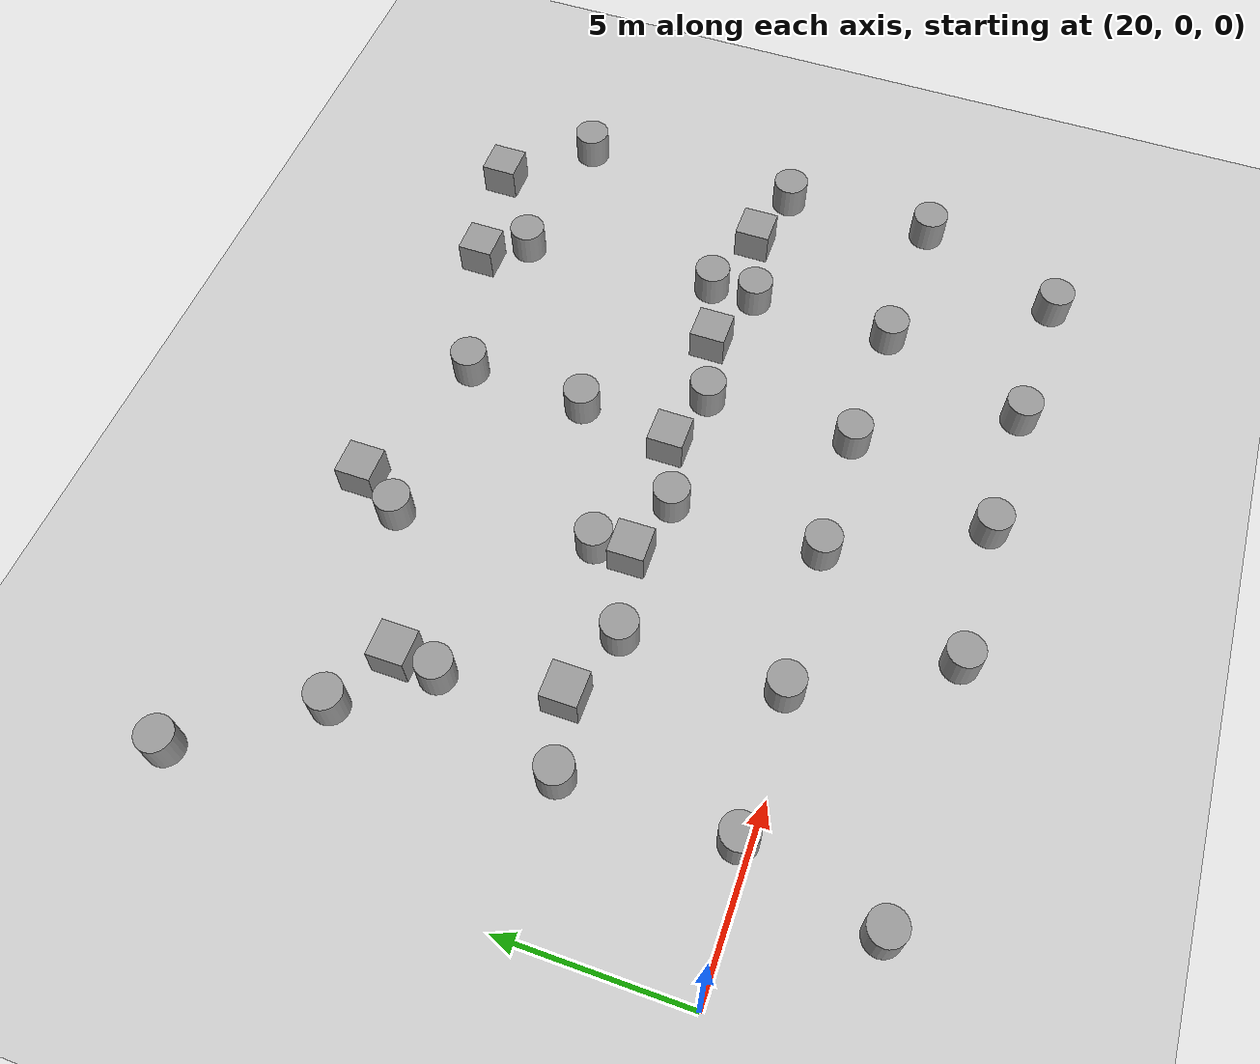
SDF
<sdf version="1.7">
 <world name="default">
  <model name="ground_plane">
   <static>1</static>
   <link name="link">
    <collision name="collision">
     <geometry><plane><normal>0 0 1</normal><size>100 100</size></plane></geometry>
     <surface>
      <contact><collide_bitmask>65535</collide_bitmask></contact>
      <friction><ode><mu>100</mu><mu2>50</mu2></ode></friction>
     </surface>
    </collision>
    <visual name="visual">
     <cast_shadows>0</cast_shadows>
     <geometry><plane><normal>0 0 1</normal><size>100 100</size></plane></geometry>
     <material>
      <script><uri>file://media/materials/scripts/gazebo.material</uri><name>Gazebo/Grey</name></script>
     </material>
    </visual>
   </link>
  </model>
  <model name="unit_cylinder_5">
   <pose>22.8884 -3.35687 0.499997 -5e-06 -1e-06 0</pose>
   <link name="link">
    <inertial>
     <mass>1</mass>
     <inertia><ixx>0.145833</ixx><ixy>0</ixy><ixz>0</ixz><iyy>0.145833</iyy><iyz>0</iyz><izz>0.125</izz></inertia>
    </inertial>
    <collision name="collision">
     <geometry><cylinder><radius>0.5</radius><length>1</length></cylinder></geometry>
    </collision>
    <visual name="visual">
     <geometry><cylinder><radius>0.5</radius><length>1</length></cylinder></geometry>
     <material>
      <script><name>Gazebo/Grey</name><uri>file://media/materials/scripts/gazebo.material</uri></script>
     </material>
    </visual>
   </link>
  </model>
  <model name="unit_cylinder_17">
   <pose>23.7386 10.803 0.499994 -3e-06 -1e-06 -0</pose>
   <link name="link">
    <inertial>
     <mass>1</mass>
     <inertia><ixx>0.145833</ixx><ixy>0</ixy><ixz>0</ixz><iyy>0.145833</iyy><iyz>0</iyz><izz>0.125</izz></inertia>
    </inertial>
    <collision name="collision">
     <geometry><cylinder><radius>0.5</radius><length>1</length></cylinder></geometry>
    </collision>
    <visual name="visual">
     <geometry><cylinder><radius>0.5</radius><length>1</length></cylinder></geometry>
     <material>
      <script><name>Gazebo/Grey</name><uri>file://media/materials/scripts/gazebo.material</uri></script>
     </material>
    </visual>
   </link>
  </model>
  <model name="unit_cylinder_19">
   <pose>23.8281 0.332783 0.499994 -3e-06 -1e-06 -0</pose>
   <link name="link">
    <inertial>
     <mass>1</mass>
     <inertia><ixx>0.145833</ixx><ixy>0</ixy><ixz>0</ixz><iyy>0.145833</iyy><iyz>0</iyz><izz>0.125</izz></inertia>
    </inertial>
    <collision name="collision">
     <geometry><cylinder><radius>0.5</radius><length>1</length></cylinder></geometry>
    </collision>
    <visual name="visual">
     <geometry><cylinder><radius>0.5</radius><length>1</length></cylinder></geometry>
     <material>
      <script><name>Gazebo/Grey</name><uri>file://media/materials/scripts/gazebo.material</uri></script>
     </material>
    </visual>
   </link>
  </model>
  <model name="unit_cylinder_20">
   <pose>23.8675 4.89288 0.499997 3e-06 2e-06 0</pose>
   <link name="link">
    <inertial>
     <mass>1</mass>
     <inertia><ixx>0.145833</ixx><ixy>0</ixy><ixz>0</ixz><iyy>0.145833</iyy><iyz>0</iyz><izz>0.125</izz></inertia>
    </inertial>
    <collision name="collision">
     <geometry><cylinder><radius>0.5</radius><length>1</length></cylinder></geometry>
    </collision>
    <visual name="visual">
     <geometry><cylinder><radius>0.5</radius><length>1</length></cylinder></geometry>
     <material>
      <script><name>Gazebo/Grey</name><uri>file://media/materials/scripts/gazebo.material</uri></script>
     </material>
    </visual>
   </link>
  </model>
  <model name="unit_cylinder_21">
   <pose>29.2741 11.5981 0.499994 -3e-06 -2e-06 0</pose>
   <link name="link">
    <inertial>
     <mass>1</mass>
     <inertia><ixx>0.145833</ixx><ixy>0</ixy><ixz>0</ixz><iyy>0.145833</iyy><iyz>0</iyz><izz>0.125</izz></inertia>
    </inertial>
    <collision name="collision">
     <geometry><cylinder><radius>0.5</radius><length>1</length></cylinder></geometry>
    </collision>
    <visual name="visual">
     <geometry><cylinder><radius>0.5</radius><length>1</length></cylinder></geometry>
     <material>
      <script><name>Gazebo/Grey</name><uri>file://media/materials/scripts/gazebo.material</uri></script>
     </material>
    </visual>
   </link>
  </model>
  <model name="unit_cylinder_22">
   <pose>27.8376 4.7217 0.499997 3e-06 2e-06 0</pose>
   <link name="link">
    <inertial>
     <mass>1</mass>
     <inertia><ixx>0.145833</ixx><ixy>0</ixy><ixz>0</ixz><iyy>0.145833</iyy><iyz>0</iyz><izz>0.125</izz></inertia>
    </inertial>
    <collision name="collision">
     <geometry><cylinder><radius>0.5</radius><length>1</length></cylinder></geometry>
    </collision>
    <visual name="visual">
     <geometry><cylinder><radius>0.5</radius><length>1</length></cylinder></geometry>
     <material>
      <script><name>Gazebo/Grey</name><uri>file://media/materials/scripts/gazebo.material</uri></script>
     </material>
    </visual>
   </link>
  </model>
  <model name="unit_cylinder_23">
   <pose>27.7679 0.370614 0.499994 -3e-06 -2e-06 0</pose>
   <link name="link">
    <inertial>
     <mass>1</mass>
     <inertia><ixx>0.145833</ixx><ixy>0</ixy><ixz>0</ixz><iyy>0.145833</iyy><iyz>0</iyz><izz>0.125</izz></inertia>
    </inertial>
    <collision name="collision">
     <geometry><cylinder><radius>0.5</radius><length>1</length></cylinder></geometry>
    </collision>
    <visual name="visual">
     <geometry><cylinder><radius>0.5</radius><length>1</length></cylinder></geometry>
     <material>
      <script><name>Gazebo/Grey</name><uri>file://media/materials/scripts/gazebo.material</uri></script>
     </material>
    </visual>
   </link>
  </model>
  <model name="unit_cylinder_24">
   <pose>31.9263 4.75221 0.499997 -3e-06 -2e-06 0</pose>
   <link name="link">
    <inertial>
     <mass>1</mass>
     <inertia><ixx>0.145833</ixx><ixy>0</ixy><ixz>0</ixz><iyy>0.145833</iyy><iyz>0</iyz><izz>0.125</izz></inertia>
    </inertial>
    <collision name="collision">
     <geometry><cylinder><radius>0.5</radius><length>1</length></cylinder></geometry>
    </collision>
    <visual name="visual">
     <geometry><cylinder><radius>0.5</radius><length>1</length></cylinder></geometry>
     <material>
      <script><name>Gazebo/Grey</name><uri>file://media/materials/scripts/gazebo.material</uri></script>
     </material>
    </visual>
   </link>
  </model>
  <model name="unit_cylinder_25">
   <pose>31.8619 0.582942 0.499997 3e-06 2e-06 0</pose>
   <link name="link">
    <inertial>
     <mass>1</mass>
     <inertia><ixx>0.145833</ixx><ixy>0</ixy><ixz>0</ixz><iyy>0.145833</iyy><iyz>0</iyz><izz>0.125</izz></inertia>
    </inertial>
    <collision name="collision">
     <geometry><cylinder><radius>0.5</radius><length>1</length></cylinder></geometry>
    </collision>
    <visual name="visual">
     <geometry><cylinder><radius>0.5</radius><length>1</length></cylinder></geometry>
     <material>
      <script><name>Gazebo/Grey</name><uri>file://media/materials/scripts/gazebo.material</uri></script>
     </material>
    </visual>
   </link>
  </model>
  <model name="unit_cylinder_26">
   <pose>35.507 4.90735 0.499997 3e-06 2e-06 0</pose>
   <link name="link">
    <inertial>
     <mass>1</mass>
     <inertia><ixx>0.145833</ixx><ixy>0</ixy><ixz>0</ixz><iyy>0.145833</iyy><iyz>0</iyz><izz>0.125</izz></inertia>
    </inertial>
    <collision name="collision">
     <geometry><cylinder><radius>0.5</radius><length>1</length></cylinder></geometry>
    </collision>
    <visual name="visual">
     <geometry><cylinder><radius>0.5</radius><length>1</length></cylinder></geometry>
     <material>
      <script><name>Gazebo/Grey</name><uri>file://media/materials/scripts/gazebo.material</uri></script>
     </material>
    </visual>
   </link>
  </model>
  <model name="unit_cylinder_27">
   <pose>35.4721 0.714644 0.499994 -3e-06 -2e-06 0</pose>
   <link name="link">
    <inertial>
     <mass>1</mass>
     <inertia><ixx>0.145833</ixx><ixy>0</ixy><ixz>0</ixz><iyy>0.145833</iyy><iyz>0</iyz><izz>0.125</izz></inertia>
    </inertial>
    <collision name="collision">
     <geometry><cylinder><radius>0.5</radius><length>1</length></cylinder></geometry>
    </collision>
    <visual name="visual">
     <geometry><cylinder><radius>0.5</radius><length>1</length></cylinder></geometry>
     <material>
      <script><name>Gazebo/Grey</name><uri>file://media/materials/scripts/gazebo.material</uri></script>
     </material>
    </visual>
   </link>
  </model>
  <model name="unit_cylinder_28">
   <pose>39.3731 4.72285 0.499997 3e-06 2e-06 0</pose>
   <link name="link">
    <inertial>
     <mass>1</mass>
     <inertia><ixx>0.145833</ixx><ixy>0</ixy><ixz>0</ixz><iyy>0.145833</iyy><iyz>0</iyz><izz>0.125</izz></inertia>
    </inertial>
    <collision name="collision">
     <geometry><cylinder><radius>0.5</radius><length>1</length></cylinder></geometry>
    </collision>
    <visual name="visual">
     <geometry><cylinder><radius>0.5</radius><length>1</length></cylinder></geometry>
     <material>
      <script><name>Gazebo/Grey</name><uri>file://media/materials/scripts/gazebo.material</uri></script>
     </material>
    </visual>
   </link>
  </model>
  <model name="unit_cylinder_29">
   <pose>39.2782 0.646206 0.499994 -3e-06 -2e-06 0</pose>
   <link name="link">
    <inertial>
     <mass>1</mass>
     <inertia><ixx>0.145833</ixx><ixy>0</ixy><ixz>0</ixz><iyy>0.145833</iyy><iyz>0</iyz><izz>0.125</izz></inertia>
    </inertial>
    <collision name="collision">
     <geometry><cylinder><radius>0.5</radius><length>1</length></cylinder></geometry>
    </collision>
    <visual name="visual">
     <geometry><cylinder><radius>0.5</radius><length>1</length></cylinder></geometry>
     <material>
      <script><name>Gazebo/Grey</name><uri>file://media/materials/scripts/gazebo.material</uri></script>
     </material>
    </visual>
   </link>
  </model>
  <model name="unit_cylinder_30">
   <pose>29.9393 -3.56031 0.499997 3e-06 2e-06 0</pose>
   <link name="link">
    <inertial>
     <mass>1</mass>
     <inertia><ixx>0.145833</ixx><ixy>0</ixy><ixz>0</ixz><iyy>0.145833</iyy><iyz>0</iyz><izz>0.125</izz></inertia>
    </inertial>
    <collision name="collision">
     <geometry><cylinder><radius>0.5</radius><length>1</length></cylinder></geometry>
    </collision>
    <visual name="visual">
     <geometry><cylinder><radius>0.5</radius><length>1</length></cylinder></geometry>
     <material>
      <script><name>Gazebo/Grey</name><uri>file://media/materials/scripts/gazebo.material</uri></script>
     </material>
    </visual>
   </link>
  </model>
  <model name="unit_cylinder_31">
   <pose>33.9627 -3.45402 0.499994 -3e-06 -2e-06 0</pose>
   <link name="link">
    <inertial>
     <mass>1</mass>
     <inertia><ixx>0.145833</ixx><ixy>0</ixy><ixz>0</ixz><iyy>0.145833</iyy><iyz>0</iyz><izz>0.125</izz></inertia>
    </inertial>
    <collision name="collision">
     <geometry><cylinder><radius>0.5</radius><length>1</length></cylinder></geometry>
    </collision>
    <visual name="visual">
     <geometry><cylinder><radius>0.5</radius><length>1</length></cylinder></geometry>
     <material>
      <script><name>Gazebo/Grey</name><uri>file://media/materials/scripts/gazebo.material</uri></script>
     </material>
    </visual>
   </link>
  </model>
  <model name="unit_cylinder_32">
   <pose>37.7582 -3.49242 0.499997 4e-06 2e-06 -0</pose>
   <link name="link">
    <inertial>
     <mass>1</mass>
     <inertia><ixx>0.145833</ixx><ixy>0</ixy><ixz>0</ixz><iyy>0.145833</iyy><iyz>0</iyz><izz>0.125</izz></inertia>
    </inertial>
    <collision name="collision">
     <geometry><cylinder><radius>0.5</radius><length>1</length></cylinder></geometry>
    </collision>
    <visual name="visual">
     <geometry><cylinder><radius>0.5</radius><length>1</length></cylinder></geometry>
     <material>
      <script><name>Gazebo/Grey</name><uri>file://media/materials/scripts/gazebo.material</uri></script>
     </material>
    </visual>
   </link>
  </model>
  <model name="unit_cylinder_33">
   <pose>41.8535 -3.61097 0.499994 -4e-06 -3e-06 -0</pose>
   <link name="link">
    <inertial>
     <mass>1</mass>
     <inertia><ixx>0.145833</ixx><ixy>0</ixy><ixz>0</ixz><iyy>0.145833</iyy><iyz>0</iyz><izz>0.125</izz></inertia>
    </inertial>
    <collision name="collision">
     <geometry><cylinder><radius>0.5</radius><length>1</length></cylinder></geometry>
    </collision>
    <visual name="visual">
     <geometry><cylinder><radius>0.5</radius><length>1</length></cylinder></geometry>
     <material>
      <script><name>Gazebo/Grey</name><uri>file://media/materials/scripts/gazebo.material</uri></script>
     </material>
    </visual>
   </link>
  </model>
  <model name="unit_cylinder_34">
   <pose>43.4707 4.84227 0.5 0 -0 0</pose>
   <link name="link">
    <inertial>
     <mass>1</mass>
     <inertia><ixx>0.145833</ixx><ixy>0</ixy><ixz>0</ixz><iyy>0.145833</iyy><iyz>0</iyz><izz>0.125</izz></inertia>
    </inertial>
    <collision name="collision">
     <geometry><cylinder><radius>0.5</radius><length>1</length></cylinder></geometry>
    </collision>
    <visual name="visual">
     <geometry><cylinder><radius>0.5</radius><length>1</length></cylinder></geometry>
     <material>
      <script><name>Gazebo/Grey</name><uri>file://media/materials/scripts/gazebo.material</uri></script>
     </material>
    </visual>
   </link>
  </model>
  <model name="unit_cylinder_35">
   <pose>43.5544 0.506139 0.499994 -4e-06 -3e-06 -0</pose>
   <link name="link">
    <inertial>
     <mass>1</mass>
     <inertia><ixx>0.145833</ixx><ixy>0</ixy><ixz>0</ixz><iyy>0.145833</iyy><iyz>0</iyz><izz>0.125</izz></inertia>
    </inertial>
    <collision name="collision">
     <geometry><cylinder><radius>0.5</radius><length>1</length></cylinder></geometry>
    </collision>
    <visual name="visual">
     <geometry><cylinder><radius>0.5</radius><length>1</length></cylinder></geometry>
     <material>
      <script><name>Gazebo/Grey</name><uri>file://media/materials/scripts/gazebo.material</uri></script>
     </material>
    </visual>
   </link>
  </model>
  <model name="unit_cylinder_36">
   <pose>34.257 11.5672 0.499994 -4e-06 -3e-06 -0</pose>
   <link name="link">
    <inertial>
     <mass>1</mass>
     <inertia><ixx>0.145833</ixx><ixy>0</ixy><ixz>0</ixz><iyy>0.145833</iyy><iyz>0</iyz><izz>0.125</izz></inertia>
    </inertial>
    <collision name="collision">
     <geometry><cylinder><radius>0.5</radius><length>1</length></cylinder></geometry>
    </collision>
    <visual name="visual">
     <geometry><cylinder><radius>0.5</radius><length>1</length></cylinder></geometry>
     <material>
      <script><name>Gazebo/Grey</name><uri>file://media/materials/scripts/gazebo.material</uri></script>
     </material>
    </visual>
   </link>
  </model>
  <model name="unit_cylinder_37">
   <pose>39.0648 11.7422 0.499997 4e-06 3e-06 -0</pose>
   <link name="link">
    <inertial>
     <mass>1</mass>
     <inertia><ixx>0.145833</ixx><ixy>0</ixy><ixz>0</ixz><iyy>0.145833</iyy><iyz>0</iyz><izz>0.125</izz></inertia>
    </inertial>
    <collision name="collision">
     <geometry><cylinder><radius>0.5</radius><length>1</length></cylinder></geometry>
    </collision>
    <visual name="visual">
     <geometry><cylinder><radius>0.5</radius><length>1</length></cylinder></geometry>
     <material>
      <script><name>Gazebo/Grey</name><uri>file://media/materials/scripts/gazebo.material</uri></script>
     </material>
    </visual>
   </link>
  </model>
  <model name="unit_cylinder_38">
   <pose>43.4124 11.3153 0.499997 4e-06 3e-06 -0</pose>
   <link name="link">
    <inertial>
     <mass>1</mass>
     <inertia><ixx>0.145833</ixx><ixy>0</ixy><ixz>0</ixz><iyy>0.145833</iyy><iyz>0</iyz><izz>0.125</izz></inertia>
    </inertial>
    <collision name="collision">
     <geometry><cylinder><radius>0.5</radius><length>1</length></cylinder></geometry>
    </collision>
    <visual name="visual">
     <geometry><cylinder><radius>0.5</radius><length>1</length></cylinder></geometry>
     <material>
      <script><name>Gazebo/Grey</name><uri>file://media/materials/scripts/gazebo.material</uri></script>
     </material>
    </visual>
   </link>
  </model>
  <model name="unit_cylinder_39">
   <pose>39.3894 6.0355 0.499994 -4e-06 -4e-06 -0</pose>
   <link name="link">
    <inertial>
     <mass>1</mass>
     <inertia><ixx>0.145833</ixx><ixy>0</ixy><ixz>0</ixz><iyy>0.145833</iyy><iyz>0</iyz><izz>0.125</izz></inertia>
    </inertial>
    <collision name="collision">
     <geometry><cylinder><radius>0.5</radius><length>1</length></cylinder></geometry>
    </collision>
    <visual name="visual">
     <geometry><cylinder><radius>0.5</radius><length>1</length></cylinder></geometry>
     <material>
      <script><name>Gazebo/Grey</name><uri>file://media/materials/scripts/gazebo.material</uri></script>
     </material>
    </visual>
   </link>
  </model>
  <model name="unit_cylinder_40">
   <pose>34.1057 8.12497 0.499994 -1e-06 -6e-06 0.00063</pose>
   <link name="link">
    <inertial>
     <mass>1</mass>
     <inertia><ixx>0.145833</ixx><ixy>0</ixy><ixz>0</ixz><iyy>0.145833</iyy><iyz>0</iyz><izz>0.125</izz></inertia>
    </inertial>
    <collision name="collision">
     <geometry><cylinder><radius>0.5</radius><length>1</length></cylinder></geometry>
    </collision>
    <visual name="visual">
     <geometry><cylinder><radius>0.5</radius><length>1</length></cylinder></geometry>
     <material>
      <script><name>Gazebo/Grey</name><uri>file://media/materials/scripts/gazebo.material</uri></script>
     </material>
    </visual>
   </link>
  </model>
  <model name="unit_cylinder_41">
   <pose>30.0835 6.24818 0.499997 3e-06 2e-06 -0.003425</pose>
   <link name="link">
    <inertial>
     <mass>1</mass>
     <inertia><ixx>0.145833</ixx><ixy>0</ixy><ixz>0</ixz><iyy>0.145833</iyy><iyz>0</iyz><izz>0.125</izz></inertia>
    </inertial>
    <collision name="collision">
     <geometry><cylinder><radius>0.5</radius><length>1</length></cylinder></geometry>
    </collision>
    <visual name="visual">
     <geometry><cylinder><radius>0.5</radius><length>1</length></cylinder></geometry>
     <material>
      <script><name>Gazebo/Grey</name><uri>file://media/materials/scripts/gazebo.material</uri></script>
     </material>
    </visual>
   </link>
  </model>
  <model name="unit_cylinder_42">
   <pose>25.3497 8.64343 0.499994 -4e-06 -3e-06 0.056303</pose>
   <link name="link">
    <inertial>
     <mass>1</mass>
     <inertia><ixx>0.145833</ixx><ixy>0</ixy><ixz>0</ixz><iyy>0.145833</iyy><iyz>0</iyz><izz>0.125</izz></inertia>
    </inertial>
    <collision name="collision">
     <geometry><cylinder><radius>0.5</radius><length>1</length></cylinder></geometry>
    </collision>
    <visual name="visual">
     <geometry><cylinder><radius>0.5</radius><length>1</length></cylinder></geometry>
     <material>
      <script><name>Gazebo/Grey</name><uri>file://media/materials/scripts/gazebo.material</uri></script>
     </material>
    </visual>
   </link>
  </model>
  <model name="unit_box_10">
   <pose>25.8503 5.39619 0.499995 0 1e-05 0</pose>
   <link name="link">
    <inertial>
     <mass>1</mass>
     <inertia>
      <ixx>0.166667</ixx>
      <ixy>0</ixy>
      <ixz>0</ixz>
      <iyy>0.166667</iyy>
      <iyz>0</iyz>
      <izz>0.166667</izz>
     </inertia>
    </inertial>
    <collision name="collision"><geometry><box><size>1 1 1</size></box></geometry></collision>
    <visual name="visual">
     <geometry><box><size>1 1 1</size></box></geometry>
     <material>
      <script><name>Gazebo/Grey</name><uri>file://media/materials/scripts/gazebo.material</uri></script>
     </material>
    </visual>
   </link>
  </model>
  <model name="unit_box_11">
   <pose>30.106 5.22927 0.5 0 -0 0.016809</pose>
   <link name="link">
    <inertial>
     <mass>1</mass>
     <inertia>
      <ixx>0.166667</ixx>
      <ixy>0</ixy>
      <ixz>0</ixz>
      <iyy>0.166667</iyy>
      <iyz>0</iyz>
      <izz>0.166667</izz>
     </inertia>
    </inertial>
    <collision name="collision"><geometry><box><size>1 1 1</size></box></geometry></collision>
    <visual name="visual">
     <geometry><box><size>1 1 1</size></box></geometry>
     <material>
      <script><name>Gazebo/Grey</name><uri>file://media/materials/scripts/gazebo.material</uri></script>
     </material>
    </visual>
   </link>
  </model>
  <model name="unit_box_12">
   <pose>33.6726 5.38909 0.499995 0 1e-05 0</pose>
   <link name="link">
    <inertial>
     <mass>1</mass>
     <inertia>
      <ixx>0.166667</ixx>
      <ixy>0</ixy>
      <ixz>0</ixz>
      <iyy>0.166667</iyy>
      <iyz>0</iyz>
      <izz>0.166667</izz>
     </inertia>
    </inertial>
    <collision name="collision"><geometry><box><size>1 1 1</size></box></geometry></collision>
    <visual name="visual">
     <geometry><box><size>1 1 1</size></box></geometry>
     <material>
      <script><name>Gazebo/Grey</name><uri>file://media/materials/scripts/gazebo.material</uri></script>
     </material>
    </visual>
   </link>
  </model>
  <model name="unit_box_13">
   <pose>37.3999 5.40579 0.499995 1e-05 -0 0</pose>
   <link name="link">
    <inertial>
     <mass>1</mass>
     <inertia>
      <ixx>0.166667</ixx>
      <ixy>0</ixy>
      <ixz>0</ixz>
      <iyy>0.166667</iyy>
      <iyz>0</iyz>
      <izz>0.166667</izz>
     </inertia>
    </inertial>
    <collision name="collision"><geometry><box><size>1 1 1</size></box></geometry></collision>
    <visual name="visual">
     <geometry><box><size>1 1 1</size></box></geometry>
     <material>
      <script><name>Gazebo/Grey</name><uri>file://media/materials/scripts/gazebo.material</uri></script>
     </material>
    </visual>
   </link>
  </model>
  <model name="unit_box_14">
   <pose>41.4714 5.33217 0.499995 0 1e-05 0</pose>
   <link name="link">
    <inertial>
     <mass>1</mass>
     <inertia>
      <ixx>0.166667</ixx>
      <ixy>0</ixy>
      <ixz>0</ixz>
      <iyy>0.166667</iyy>
      <iyz>0</iyz>
      <izz>0.166667</izz>
     </inertia>
    </inertial>
    <collision name="collision"><geometry><box><size>1 1 1</size></box></geometry></collision>
    <visual name="visual">
     <geometry><box><size>1 1 1</size></box></geometry>
     <material>
      <script><name>Gazebo/Grey</name><uri>file://media/materials/scripts/gazebo.material</uri></script>
     </material>
    </visual>
   </link>
  </model>
  <model name="unit_box_15">
   <pose>41.4035 13.4544 0.5 -1e-06 -0 -7e-06</pose>
   <link name="link">
    <inertial>
     <mass>1</mass>
     <inertia>
      <ixx>0.166667</ixx>
      <ixy>0</ixy>
      <ixz>0</ixz>
      <iyy>0.166667</iyy>
      <iyz>0</iyz>
      <izz>0.166667</izz>
     </inertia>
    </inertial>
    <collision name="collision"><geometry><box><size>1 1 1</size></box></geometry></collision>
    <visual name="visual">
     <geometry><box><size>1 1 1</size></box></geometry>
     <material>
      <script><name>Gazebo/Grey</name><uri>file://media/materials/scripts/gazebo.material</uri></script>
     </material>
    </visual>
   </link>
  </model>
  <model name="unit_box_16">
   <pose>38.1984 12.8667 0.499995 0 1e-05 0</pose>
   <link name="link">
    <inertial>
     <mass>1</mass>
     <inertia>
      <ixx>0.166667</ixx>
      <ixy>0</ixy>
      <ixz>0</ixz>
      <iyy>0.166667</iyy>
      <iyz>0</iyz>
      <izz>0.166667</izz>
     </inertia>
    </inertial>
    <collision name="collision"><geometry><box><size>1 1 1</size></box></geometry></collision>
    <visual name="visual">
     <geometry><box><size>1 1 1</size></box></geometry>
     <material>
      <script><name>Gazebo/Grey</name><uri>file://media/materials/scripts/gazebo.material</uri></script>
     </material>
    </visual>
   </link>
  </model>
  <model name="unit_box_17">
   <pose>29.9782 12.8514 0.499995 -1e-05 -0 -0</pose>
   <link name="link">
    <inertial>
     <mass>1</mass>
     <inertia>
      <ixx>0.166667</ixx>
      <ixy>0</ixy>
      <ixz>0</ixz>
      <iyy>0.166667</iyy>
      <iyz>0</iyz>
      <izz>0.166667</izz>
     </inertia>
    </inertial>
    <collision name="collision"><geometry><box><size>1 1 1</size></box></geometry></collision>
    <visual name="visual">
     <geometry><box><size>1 1 1</size></box></geometry>
     <material>
      <script><name>Gazebo/Grey</name><uri>file://media/materials/scripts/gazebo.material</uri></script>
     </material>
    </visual>
   </link>
  </model>
  <model name="unit_box_18">
   <pose>25.4515 9.78208 0.499995 0 1e-05 0</pose>
   <link name="link">
    <inertial>
     <mass>1</mass>
     <inertia>
      <ixx>0.166667</ixx>
      <ixy>0</ixy>
      <ixz>0</ixz>
      <iyy>0.166667</iyy>
      <iyz>0</iyz>
      <izz>0.166667</izz>
     </inertia>
    </inertial>
    <collision name="collision"><geometry><box><size>1 1 1</size></box></geometry></collision>
    <visual name="visual">
     <geometry><box><size>1 1 1</size></box></geometry>
     <material>
      <script><name>Gazebo/Grey</name><uri>file://media/materials/scripts/gazebo.material</uri></script>
     </material>
    </visual>
   </link>
  </model>
  <model name="unit_cylinder_48">
   <pose>21.4603 14.0922 0.499997 3e-06 4e-06 -0</pose>
   <link name="link">
    <inertial>
     <mass>1</mass>
     <inertia><ixx>0.145833</ixx><ixy>0</ixy><ixz>0</ixz><iyy>0.145833</iyy><iyz>0</iyz><izz>0.125</izz></inertia>
    </inertial>
    <collision name="collision">
     <geometry><cylinder><radius>0.5</radius><length>1</length></cylinder></geometry>
    </collision>
    <visual name="visual">
     <geometry><cylinder><radius>0.5</radius><length>1</length></cylinder></geometry>
     <material>
      <script><name>Gazebo/Grey</name><uri>file://media/materials/scripts/gazebo.material</uri></script>
     </material>
    </visual>
   </link>
  </model>
 </world>
</sdf>
